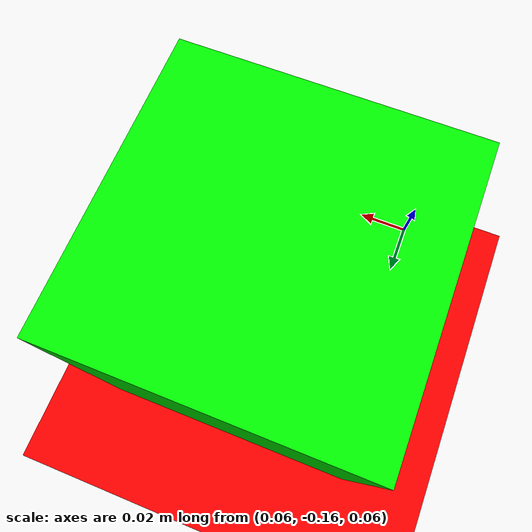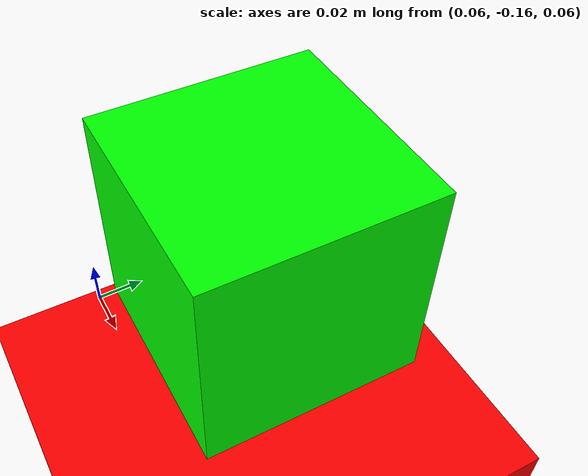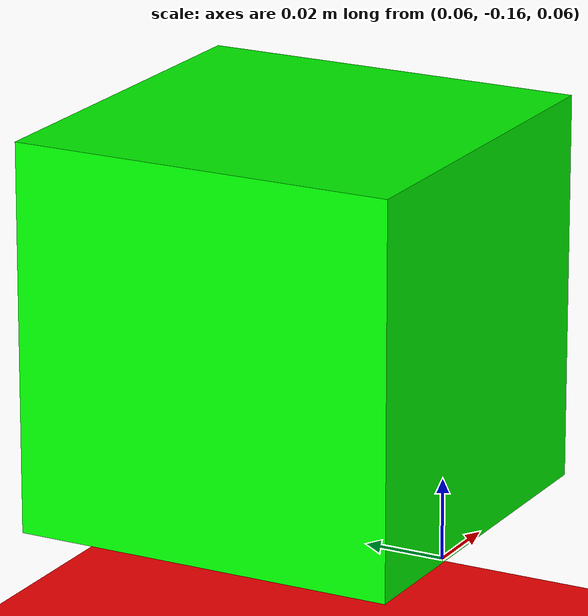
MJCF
<mujoco model="Cube">
	<compiler inertiafromgeom="true" angle="degree" />

    <option timestep = "0.00674">
        <flag refsafe = "disable" />
    </option>

	<asset>
		<texture name="grid" type="2d" builtin="checker" rgb1=".2 .3 .4" rgb2=".1 .15 .2" width="512" height="512" mark="edge" markrgb=".8 .8 .8"/>
    	<material name="grid" texture="grid" texrepeat="1 1" texuniform="true" reflectance=".3"/>
	</asset>

	<worldbody>
		<geom name="floor" pos="0 0 -1.0" size=".0 .0 .01" type="plane" material="grid" />

        <light directional="true" diffuse=".2 .2 .2" specular="0 0 0" pos="0 0 5" dir="0 0 -1" castshadow="false"/>
        <light directional="false" diffuse=".8 .8 .8" specular="0.3 0.3 0.3" pos="0 0 4.0" dir="0 0 -1"/>

        <body name="cube" pos="0.1 -0.1 0.1">
        	<inertial pos="0.0 0.0 0.0" mass="0.37" fullinertia="0.0006167 0.0006167 0.0006167 0 0 0"/>
        	<freejoint name="cube_board"/>
        	<geom name="cube_geom" type="box" size="0.05 0.05 0.05" quat="1 0 0 0" friction="0.3 0.005 0.0001" rgba="0 1 0 1.0"  />

        </body>

        <body name="board" pos="0.0 0.0 -0.3">
        	<geom size="2.0 2.0 0.3" rgba="1 0 0 1" type="box" solref = "-300.0 -36.02" friction="1.0 0.005 0.0001"/> <!-- friction="0.3 0.005 0.0001" -->
        </body>

        <camera name="cam1" mode="targetbody" target="cube" pos="-0.5 -0.5 0.1" /><!-- euler="90 0 45" -->
	</worldbody>

</mujoco>
